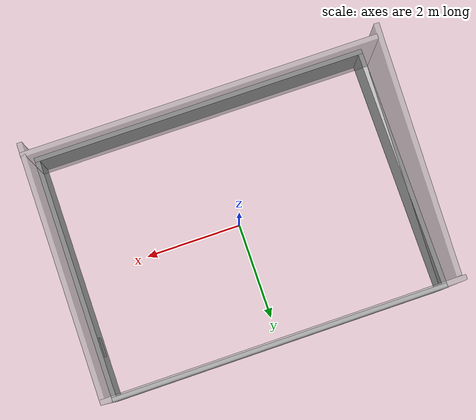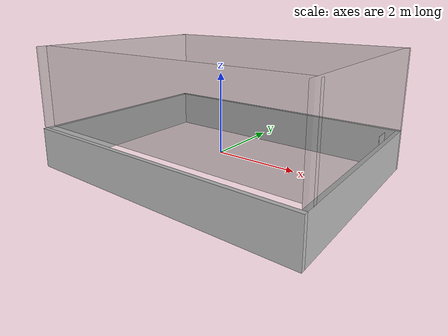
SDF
<sdf version="1.7">
 <world name="default">
  <light name="sun" type="directional">
   <pose>0 0 10 0 -0 0</pose>
   <diffuse>0.4 0.4 0.4 1</diffuse>
   <specular>0.1 0.1 0.1 1</specular>
   <attenuation>
    <range>500</range>
    <constant>0.8</constant>
    <linear>0.02</linear>
    <quadratic>0.001</quadratic>
   </attenuation>
   <direction>-0.5 0.1 -0.9</direction>
   <spot><inner_angle>0</inner_angle><outer_angle>0</outer_angle><falloff>0</falloff></spot>
  </light>
  <gravity>0 0 -9.81</gravity>
  <physics type="ode">
   <max_step_size>0.001</max_step_size>
   <real_time_factor>1</real_time_factor>
   <real_time_update_rate>1000</real_time_update_rate>
  </physics>
  <scene><ambient>0.4 0.4 0.4 1</ambient><background>0 0 0 255</background><shadows>1</shadows></scene>
  <model name="arena_wall_long">
   <static>1</static>
   <link name="link">
    <collision name="arena_wall_long_collision">
     <geometry><box><size>7.08 0.1 1</size></box></geometry>
     <surface><friction><ode><mu>0.3</mu><mu2>0.3</mu2></ode></friction></surface>
    </collision>
    <visual name="arena_wall_long"><geometry><box><size>7.08 0.1 1</size></box></geometry></visual>
    <pose>0 -2.55 0.1 0 -0 0</pose>
   </link>
  </model>
  <model name="arena_wall_long_2">
   <static>1</static>
   <link name="link">
    <collision name="arena_wall_long_2_collision">
     <geometry><box><size>7.08 0.1 1</size></box></geometry>
     <surface><friction><ode><mu>0.3</mu><mu2>0.3</mu2></ode></friction></surface>
    </collision>
    <visual name="arena_wall_long_2"><geometry><box><size>7.08 0.1 1</size></box></geometry></visual>
    <pose>0 2.55 0.1 0 -0 0</pose>
   </link>
  </model>
  <model name="arena_wall_short">
   <static>1</static>
   <link name="link">
    <collision name="arena_wall_short_collision">
     <geometry><box><size>0.1 5 1</size></box></geometry>
     <surface><friction><ode><mu>0.3</mu><mu2>0.3</mu2></ode></friction></surface>
    </collision>
    <visual name="arena_wall_short"><geometry><box><size>0.1 5 1</size></box></geometry></visual>
    <pose>3.49 0 0.1 0 -0 0</pose>
   </link>
  </model>
  <model name="arena_wall_short_2">
   <static>1</static>
   <link name="link">
    <collision name="arena_wall_short_2_collision">
     <geometry><box><size>0.1 5 1</size></box></geometry>
     <surface><friction><ode><mu>0.3</mu><mu2>0.3</mu2></ode></friction></surface>
    </collision>
    <visual name="arena_wall_short_2"><geometry><box><size>0.1 5 1</size></box></geometry></visual>
    <pose>-3.49 0 0.1 0 -0 0</pose>
   </link>
  </model>
  <model name="arena_glass_short">
   <static>1</static>
   <link name="link">
    <collision name="arena_glass_short_collision">
     <geometry><box><size>0.1 5 2</size></box></geometry>
     <surface><friction><ode><mu>0.3</mu><mu2>0.3</mu2></ode></friction></surface>
    </collision>
    <visual name="arena_glass_short">
     <geometry><box><size>0.1 5 2</size></box></geometry>
     <material>
      <script><name>Gazebo/GreyTransparent</name><uri>file://media/materials/scripts/gazebo.material</uri></script>
     </material>
    </visual>
    <pose>3.49 0 1.6 0 -0 0</pose>
   </link>
  </model>
  <model name="arena_glass_short_2">
   <pose>-0.020518 -0.130216 -2e-06 -0 1e-06 -0.034603</pose>
   <link name="link">
    <collision name="arena_glass_short_2_collision">
     <geometry><box><size>0.1 5 2</size></box></geometry>
     <surface><friction><ode><mu>0.3</mu><mu2>0.3</mu2></ode></friction></surface>
    </collision>
    <visual name="arena_glass_short_2">
     <geometry><box><size>0.1 5 2</size></box></geometry>
     <material>
      <script><name>Gazebo/GreyTransparent</name><uri>file://media/materials/scripts/gazebo.material</uri></script>
     </material>
    </visual>
    <pose>-3.49 0 1.6 0 -0 0</pose>
    <inertial>
     <inertia><ixx>1</ixx><ixy>0</ixy><ixz>0</ixz><iyy>1</iyy><iyz>0</iyz><izz>1</izz></inertia>
     <mass>1</mass>
    </inertial>
    <static>1</static>
   </link>
  </model>
  <model name="arena_glass_long">
   <static>1</static>
   <link name="link">
    <collision name="arena_glass_long_collision">
     <geometry><box><size>7.08 0.1 2</size></box></geometry>
     <surface><friction><ode><mu>0.3</mu><mu2>0.3</mu2></ode></friction></surface>
    </collision>
    <visual name="arena_glass_long">
     <geometry><box><size>7.08 0.1 2</size></box></geometry>
     <material>
      <script><name>Gazebo/GreyTransparent</name><uri>file://media/materials/scripts/gazebo.material</uri></script>
     </material>
    </visual>
    <pose>0 2.55 1.6 0 -0 0</pose>
   </link>
  </model>
  <model name="arena_glass_long_2">
   <pose>0.005319 0.286846 0 0 -0 0</pose>
   <static>1</static>
   <link name="link">
    <collision name="arena_wall_short_2_collision">
     <geometry><box><size>7.08 0.1 2</size></box></geometry>
     <surface><friction><ode><mu>0.3</mu><mu2>0.3</mu2></ode></friction></surface>
    </collision>
    <visual name="arena_wall_short_2">
     <geometry><box><size>7.08 0.1 2</size></box></geometry>
     <material>
      <script><name>Gazebo/GreyTransparent</name><uri>file://media/materials/scripts/gazebo.material</uri></script>
     </material>
    </visual>
    <pose>0 -2.55 1.6 0 -0 0</pose>
   </link>
  </model>
  <model name="tag_36_11_00007">
   <link name="link">
    <pose>3.4 1.5 0.55 3.14159 -1.56159 3.14159</pose>
    <visual name="tag_36_11_00007">
     <geometry><box><size>0.4 0.4 0.005</size></box></geometry>
     <material>
      <script>
       <uri>model://apriltags/tag_36_11_00007/materials/scripts</uri>
       <uri>model://apriltags/tag_36_11_00007/materials/textures</uri>
       <name>tag_36_11_00007</name>
      </script>
     </material>
    </visual>
    <collision name="tag_36_11_00007_collision">
     <geometry><box><size>0.4 0.4 0.005</size></box></geometry>
    </collision>
   </link>
   <static>1</static>
  </model>
  <magnetic_field>6e-06 2.3e-05 -4.2e-05</magnetic_field>
  <atmosphere type="adiabatic"/>
  <audio><device>default</device></audio>
  <spherical_coordinates>
   <surface_model>EARTH_WGS84</surface_model>
   <latitude_deg>0</latitude_deg>
   <longitude_deg>0</longitude_deg>
   <elevation>0</elevation>
   <heading_deg>0</heading_deg>
  </spherical_coordinates>
 </world>
</sdf>
